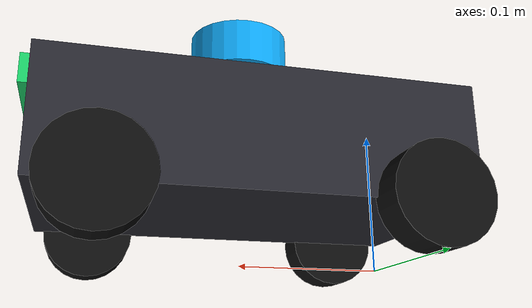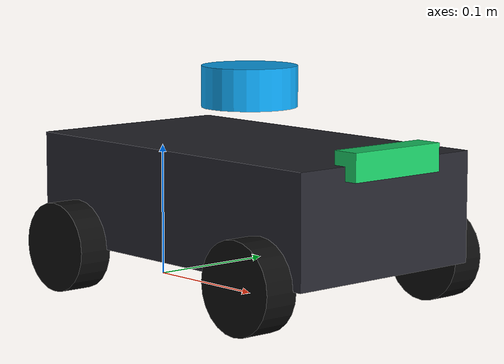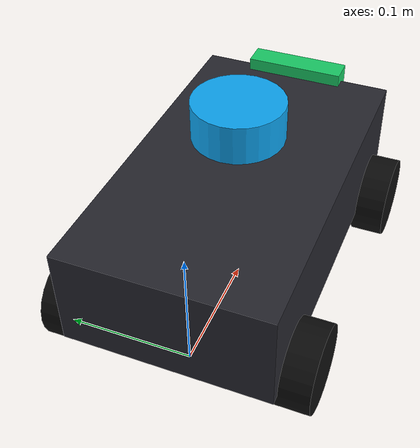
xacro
<?xml version="1.0"?>
<robot name="sulg_robot" xmlns:xacro="http://www.ros.org/wiki/xacro">

  <!-- Dimensions -->
  <xacro:property name="wheelbase" value="0.20" />
  <xacro:property name="track_width" value="0.18" />
  <xacro:property name="chassis_length" value="0.28" />
  <xacro:property name="chassis_width" value="0.16" />
  <xacro:property name="chassis_height" value="0.08" />
  <xacro:property name="wheel_radius" value="0.033" />
  <xacro:property name="wheel_width" value="0.026" />

  <!-- Base Footprint (Ground Projection) -->
  <link name="base_footprint"/>

  <joint name="base_joint" type="fixed">
    <parent link="base_footprint"/>
    <child link="base_link"/>
    <origin xyz="0 0 ${wheel_radius}" rpy="0 0 0"/>
  </joint>

  <!-- Chassis Body (Base Link centered at rear axle) -->
  <link name="base_link">
    <visual>
      <origin xyz="${wheelbase/2} 0 ${chassis_height/2}" rpy="0 0 0"/>
      <geometry>
        <box size="${chassis_length} ${chassis_width} ${chassis_height}"/>
      </geometry>
      <material name="dark_grey">
        <color rgba="0.15 0.15 0.18 1.0"/>
      </material>
    </visual>
    <collision>
      <origin xyz="${wheelbase/2} 0 ${chassis_height/2}" rpy="0 0 0"/>
      <geometry>
        <box size="${chassis_length} ${chassis_width} ${chassis_height}"/>
      </geometry>
    </collision>
    <inertial>
      <mass value="1.5"/>
      <origin xyz="${wheelbase/2} 0 ${chassis_height/2}" rpy="0 0 0"/>
      <inertia ixx="0.005" ixy="0.0" ixz="0.0" iyy="0.010" iyz="0.0" izz="0.012"/>
    </inertial>
  </link>

  <!-- RPLiDAR C1 Scanner Link -->
  <link name="laser_frame">
    <visual>
      <origin xyz="0 0 0" rpy="0 0 0"/>
      <geometry>
        <cylinder radius="0.035" length="0.03"/>
      </geometry>
      <material name="cyan">
        <color rgba="0.05 0.65 0.95 1.0"/>
      </material>
    </visual>
  </link>

  <joint name="laser_joint" type="fixed">
    <parent link="base_link"/>
    <child link="laser_frame"/>
    <origin xyz="${wheelbase/2} 0 0.12" rpy="3.14159 0 0"/>
  </joint>

  <!-- Camera Link (Front Bumper) -->
  <link name="camera_link">
    <visual>
      <origin xyz="0 0 0" rpy="0 0 0"/>
      <geometry>
        <box size="0.02 0.08 0.02"/>
      </geometry>
      <material name="green">
        <color rgba="0.1 0.8 0.4 1.0"/>
      </material>
    </visual>
  </link>

  <joint name="camera_joint" type="fixed">
    <parent link="base_link"/>
    <child link="camera_link"/>
    <origin xyz="${wheelbase + 0.04} 0 0.08" rpy="0 0 0"/>
  </joint>

  <!-- Rear Left Wheel (Drive) -->
  <link name="rear_left_wheel">
    <visual>
      <geometry>
        <cylinder radius="${wheel_radius}" length="${wheel_width}"/>
      </geometry>
      <material name="black">
        <color rgba="0.05 0.05 0.05 1.0"/>
      </material>
    </visual>
  </link>
  <joint name="rear_left_wheel_joint" type="continuous">
    <parent link="base_link"/>
    <child link="rear_left_wheel"/>
    <origin xyz="0 ${track_width/2} 0" rpy="-1.5708 0 0"/>
    <axis xyz="0 0 1"/>
  </joint>

  <!-- Rear Right Wheel (Drive) -->
  <link name="rear_right_wheel">
    <visual>
      <geometry>
        <cylinder radius="${wheel_radius}" length="${wheel_width}"/>
      </geometry>
      <material name="black">
        <color rgba="0.05 0.05 0.05 1.0"/>
      </material>
    </visual>
  </link>
  <joint name="rear_right_wheel_joint" type="continuous">
    <parent link="base_link"/>
    <child link="rear_right_wheel"/>
    <origin xyz="0 ${-track_width/2} 0" rpy="-1.5708 0 0"/>
    <axis xyz="0 0 1"/>
  </joint>

  <!-- Front Left Steering Knuckle & Wheel -->
  <link name="front_left_steer_link"/>
  <joint name="front_left_steer_joint" type="revolute">
    <parent link="base_link"/>
    <child link="front_left_steer_link"/>
    <origin xyz="${wheelbase} ${track_width/2} 0" rpy="0 0 0"/>
    <axis xyz="0 0 1"/>
    <limit lower="-0.5236" upper="0.5236" effort="5.0" velocity="2.0"/>
  </joint>

  <link name="front_left_wheel">
    <visual>
      <geometry>
        <cylinder radius="${wheel_radius}" length="${wheel_width}"/>
      </geometry>
      <material name="black">
        <color rgba="0.05 0.05 0.05 1.0"/>
      </material>
    </visual>
  </link>
  <joint name="front_left_wheel_joint" type="continuous">
    <parent link="front_left_steer_link"/>
    <child link="front_left_wheel"/>
    <origin xyz="0 0 0" rpy="-1.5708 0 0"/>
    <axis xyz="0 0 1"/>
  </joint>

  <!-- Front Right Steering Knuckle & Wheel -->
  <link name="front_right_steer_link"/>
  <joint name="front_right_steer_joint" type="revolute">
    <parent link="base_link"/>
    <child link="front_right_steer_link"/>
    <origin xyz="${wheelbase} ${-track_width/2} 0" rpy="0 0 0"/>
    <axis xyz="0 0 1"/>
    <limit lower="-0.5236" upper="0.5236" effort="5.0" velocity="2.0"/>
  </joint>

  <link name="front_right_wheel">
    <visual>
      <geometry>
        <cylinder radius="${wheel_radius}" length="${wheel_width}"/>
      </geometry>
      <material name="black">
        <color rgba="0.05 0.05 0.05 1.0"/>
      </material>
    </visual>
  </link>
  <joint name="front_right_wheel_joint" type="continuous">
    <parent link="front_right_steer_link"/>
    <child link="front_right_wheel"/>
    <origin xyz="0 0 0" rpy="-1.5708 0 0"/>
    <axis xyz="0 0 1"/>
  </joint>

</robot>
